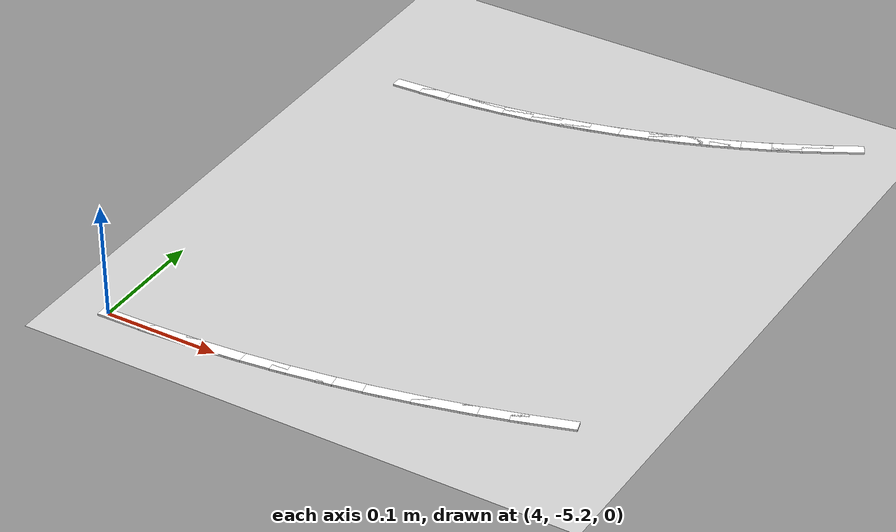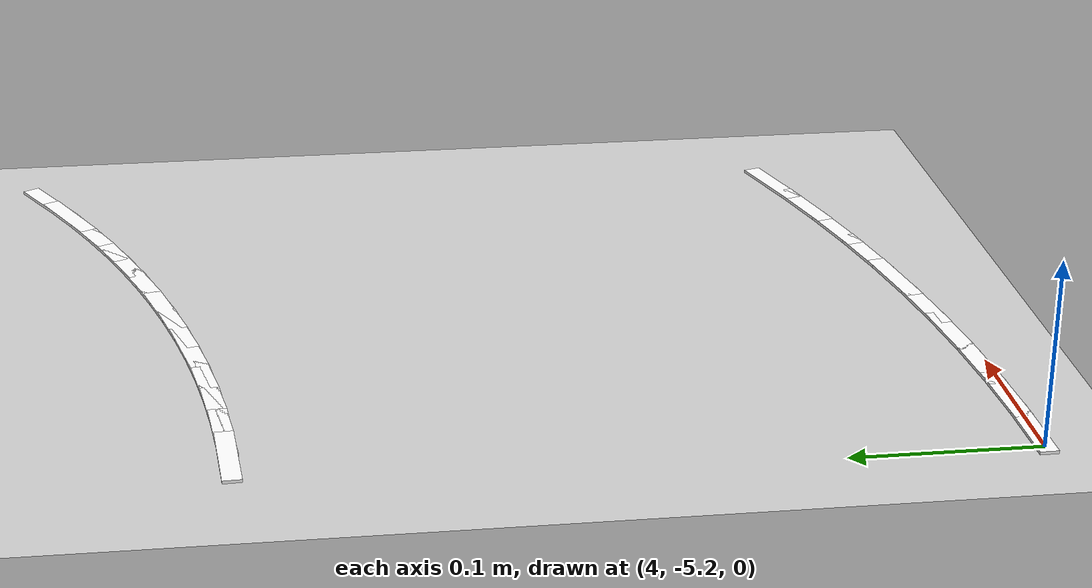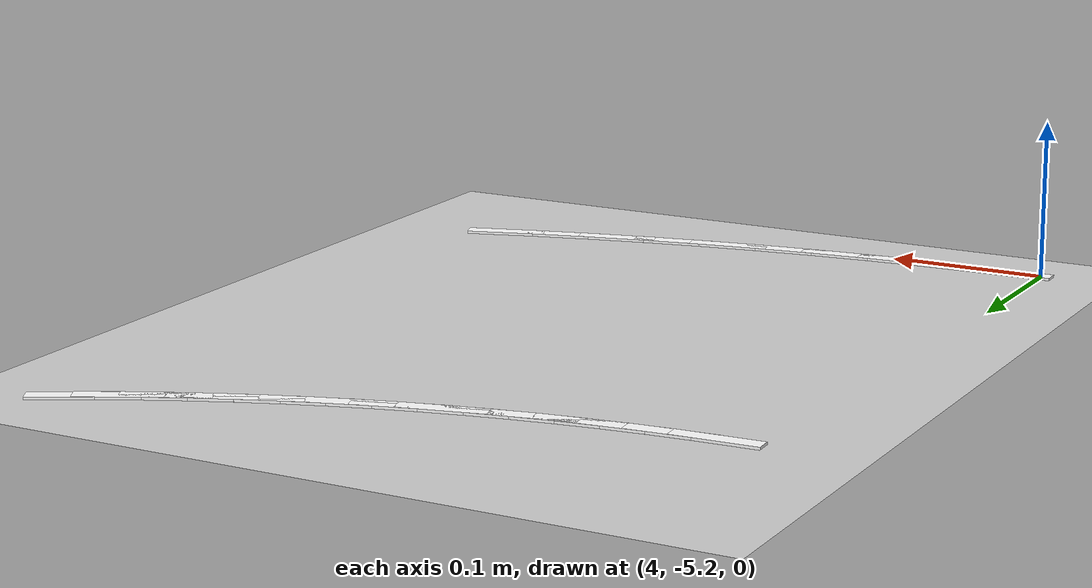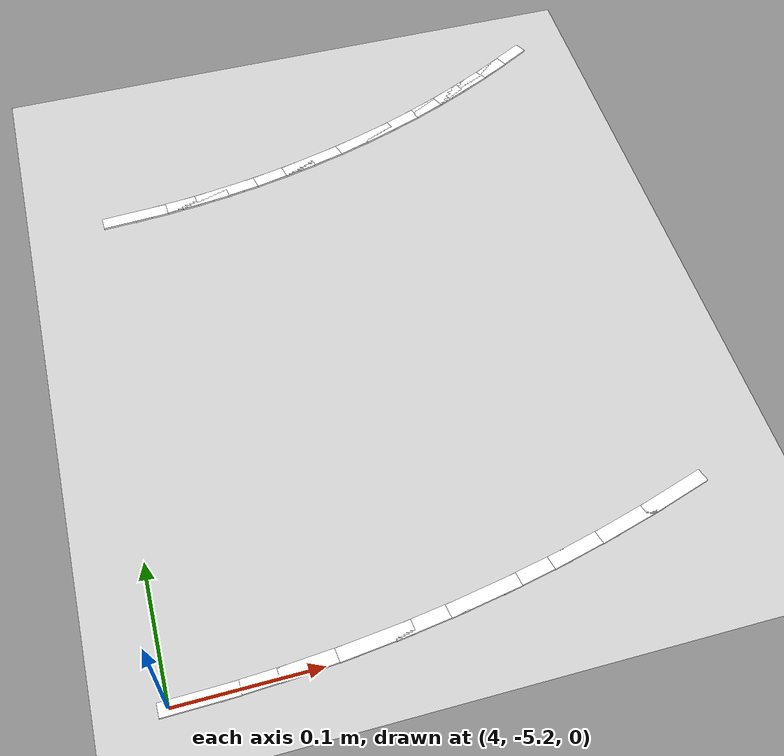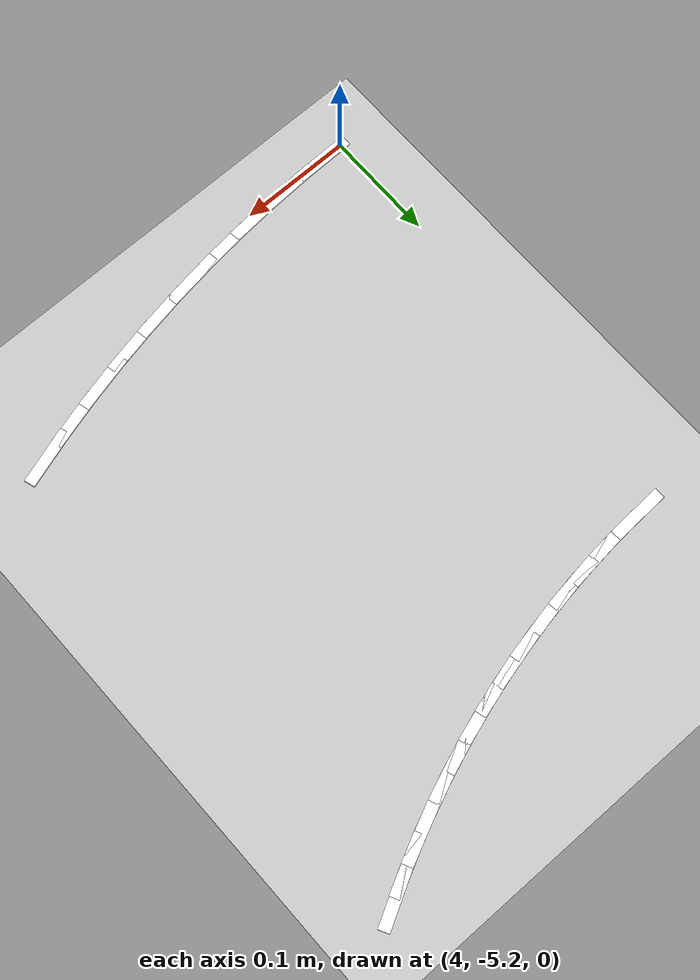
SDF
<sdf version="1.7">
 <world name="default">
  <model name="ground_plane">
   <static>1</static>
   <link name="link">
    <collision name="collision">
     <geometry><plane><normal>0 0 1</normal><size>100 100</size></plane></geometry>
     <surface>
      <contact><collide_bitmask>65535</collide_bitmask></contact>
      <friction><ode><mu>100</mu><mu2>50</mu2></ode></friction>
     </surface>
    </collision>
    <visual name="visual">
     <cast_shadows>0</cast_shadows>
     <geometry><plane><normal>0 0 1</normal><size>100 100</size></plane></geometry>
     <material>
      <script><uri>file://media/materials/scripts/gazebo.material</uri><name>Gazebo/Grey</name></script>
     </material>
    </visual>
   </link>
  </model>
  <model name="lane_line_right_50">
   <static>1</static>
   <link name="link">
    <pose>0 0 -0.004 0 -0 0</pose>
    <visual name="visual">
     <geometry><box><size>0.0521 0.01 0.01</size></box></geometry>
     <material><ambient>1 1 1 1</ambient><diffuse>1 1 1 1</diffuse></material>
    </visual>
    <collision name="collision"><geometry><box><size>0.0521 0.01 0.01</size></box></geometry></collision>
   </link>
   <pose>4.01923 -5.19972 0 0 -0 0.016029</pose>
  </model>
  <model name="lane_line_left_51">
   <static>1</static>
   <link name="link">
    <pose>0 0 -0.004 0 -0 0</pose>
    <visual name="visual">
     <geometry><box><size>0.0521 0.01 0.01</size></box></geometry>
     <material><ambient>1 1 1 1</ambient><diffuse>1 1 1 1</diffuse></material>
    </visual>
    <collision name="collision"><geometry><box><size>0.0521 0.01 0.01</size></box></geometry></collision>
   </link>
   <pose>4.03845 -4.79895 0 0 -0 0.048086</pose>
  </model>
  <model name="lane_line_right_51">
   <static>1</static>
   <link name="link">
    <pose>0 0 -0.004 0 -0 0</pose>
    <visual name="visual">
     <geometry><box><size>0.0521 0.01 0.01</size></box></geometry>
     <material><ambient>1 1 1 1</ambient><diffuse>1 1 1 1</diffuse></material>
    </visual>
    <collision name="collision"><geometry><box><size>0.0521 0.01 0.01</size></box></geometry></collision>
   </link>
   <pose>4.05767 -5.19848 0 0 -0 0.048086</pose>
  </model>
  <model name="lane_line_left_52">
   <static>1</static>
   <link name="link">
    <pose>0 0 -0.004 0 -0 0</pose>
    <visual name="visual">
     <geometry><box><size>0.0521 0.01 0.01</size></box></geometry>
     <material><ambient>1 1 1 1</ambient><diffuse>1 1 1 1</diffuse></material>
    </visual>
    <collision name="collision"><geometry><box><size>0.0521 0.01 0.01</size></box></geometry></collision>
   </link>
   <pose>4.06404 -4.7973 0 0 -0 0.080143</pose>
  </model>
  <model name="lane_line_right_52">
   <static>1</static>
   <link name="link">
    <pose>0 0 -0.004 0 -0 0</pose>
    <visual name="visual">
     <geometry><box><size>0.0521 0.01 0.01</size></box></geometry>
     <material><ambient>1 1 1 1</ambient><diffuse>1 1 1 1</diffuse></material>
    </visual>
    <collision name="collision"><geometry><box><size>0.0521 0.01 0.01</size></box></geometry></collision>
   </link>
   <pose>4.09606 -5.19602 0 0 -0 0.080143</pose>
  </model>
  <model name="lane_line_left_53">
   <static>1</static>
   <link name="link">
    <pose>0 0 -0.004 0 -0 0</pose>
    <visual name="visual">
     <geometry><box><size>0.0521 0.01 0.01</size></box></geometry>
     <material><ambient>1 1 1 1</ambient><diffuse>1 1 1 1</diffuse></material>
    </visual>
    <collision name="collision"><geometry><box><size>0.0521 0.01 0.01</size></box></geometry></collision>
   </link>
   <pose>4.08956 -4.79484 0 0 -0 0.1122</pose>
  </model>
  <model name="lane_line_right_53">
   <static>1</static>
   <link name="link">
    <pose>0 0 -0.004 0 -0 0</pose>
    <visual name="visual">
     <geometry><box><size>0.0521 0.01 0.01</size></box></geometry>
     <material><ambient>1 1 1 1</ambient><diffuse>1 1 1 1</diffuse></material>
    </visual>
    <collision name="collision"><geometry><box><size>0.0521 0.01 0.01</size></box></geometry></collision>
   </link>
   <pose>4.13434 -5.19233 0 0 -0 0.1122</pose>
  </model>
  <model name="lane_line_left_54">
   <static>1</static>
   <link name="link">
    <pose>0 0 -0.004 0 -0 0</pose>
    <visual name="visual">
     <geometry><box><size>0.0521 0.01 0.01</size></box></geometry>
     <material><ambient>1 1 1 1</ambient><diffuse>1 1 1 1</diffuse></material>
    </visual>
    <collision name="collision"><geometry><box><size>0.0521 0.01 0.01</size></box></geometry></collision>
   </link>
   <pose>4.11499 -4.79156 0 0 -0 0.144257</pose>
  </model>
  <model name="lane_line_right_54">
   <static>1</static>
   <link name="link">
    <pose>0 0 -0.004 0 -0 0</pose>
    <visual name="visual">
     <geometry><box><size>0.0521 0.01 0.01</size></box></geometry>
     <material><ambient>1 1 1 1</ambient><diffuse>1 1 1 1</diffuse></material>
    </visual>
    <collision name="collision"><geometry><box><size>0.0521 0.01 0.01</size></box></geometry></collision>
   </link>
   <pose>4.17249 -5.18741 0 0 -0 0.144257</pose>
  </model>
  <model name="lane_line_left_55">
   <static>1</static>
   <link name="link">
    <pose>0 0 -0.004 0 -0 0</pose>
    <visual name="visual">
     <geometry><box><size>0.0521 0.01 0.01</size></box></geometry>
     <material><ambient>1 1 1 1</ambient><diffuse>1 1 1 1</diffuse></material>
    </visual>
    <collision name="collision"><geometry><box><size>0.0521 0.01 0.01</size></box></geometry></collision>
   </link>
   <pose>4.1403 -4.78747 0 0 -0 0.176314</pose>
  </model>
  <model name="lane_line_right_55">
   <static>1</static>
   <link name="link">
    <pose>0 0 -0.004 0 -0 0</pose>
    <visual name="visual">
     <geometry><box><size>0.0521 0.01 0.01</size></box></geometry>
     <material><ambient>1 1 1 1</ambient><diffuse>1 1 1 1</diffuse></material>
    </visual>
    <collision name="collision"><geometry><box><size>0.0521 0.01 0.01</size></box></geometry></collision>
   </link>
   <pose>4.21046 -5.18127 0 0 -0 0.176314</pose>
  </model>
  <model name="lane_line_left_56">
   <static>1</static>
   <link name="link">
    <pose>0 0 -0.004 0 -0 0</pose>
    <visual name="visual">
     <geometry><box><size>0.0521 0.01 0.01</size></box></geometry>
     <material><ambient>1 1 1 1</ambient><diffuse>1 1 1 1</diffuse></material>
    </visual>
    <collision name="collision"><geometry><box><size>0.0521 0.01 0.01</size></box></geometry></collision>
   </link>
   <pose>4.16547 -4.78257 0 0 -0 0.208371</pose>
  </model>
  <model name="lane_line_right_56">
   <static>1</static>
   <link name="link">
    <pose>0 0 -0.004 0 -0 0</pose>
    <visual name="visual">
     <geometry><box><size>0.0521 0.01 0.01</size></box></geometry>
     <material><ambient>1 1 1 1</ambient><diffuse>1 1 1 1</diffuse></material>
    </visual>
    <collision name="collision"><geometry><box><size>0.0521 0.01 0.01</size></box></geometry></collision>
   </link>
   <pose>4.24821 -5.17392 0 0 -0 0.208371</pose>
  </model>
  <model name="lane_line_left_57">
   <static>1</static>
   <link name="link">
    <pose>0 0 -0.004 0 -0 0</pose>
    <visual name="visual">
     <geometry><box><size>0.0521 0.01 0.01</size></box></geometry>
     <material><ambient>1 1 1 1</ambient><diffuse>1 1 1 1</diffuse></material>
    </visual>
    <collision name="collision"><geometry><box><size>0.0521 0.01 0.01</size></box></geometry></collision>
   </link>
   <pose>4.19046 -4.77686 0 0 -0 0.240428</pose>
  </model>
  <model name="lane_line_right_57">
   <static>1</static>
   <link name="link">
    <pose>0 0 -0.004 0 -0 0</pose>
    <visual name="visual">
     <geometry><box><size>0.0521 0.01 0.01</size></box></geometry>
     <material><ambient>1 1 1 1</ambient><diffuse>1 1 1 1</diffuse></material>
    </visual>
    <collision name="collision"><geometry><box><size>0.0521 0.01 0.01</size></box></geometry></collision>
   </link>
   <pose>4.28571 -5.16536 0 0 -0 0.240428</pose>
  </model>
  <model name="lane_line_left_58">
   <static>1</static>
   <link name="link">
    <pose>0 0 -0.004 0 -0 0</pose>
    <visual name="visual">
     <geometry><box><size>0.0521 0.01 0.01</size></box></geometry>
     <material><ambient>1 1 1 1</ambient><diffuse>1 1 1 1</diffuse></material>
    </visual>
    <collision name="collision"><geometry><box><size>0.0521 0.01 0.01</size></box></geometry></collision>
   </link>
   <pose>4.21527 -4.77036 0 0 -0 0.272485</pose>
  </model>
  <model name="lane_line_right_58">
   <static>1</static>
   <link name="link">
    <pose>0 0 -0.004 0 -0 0</pose>
    <visual name="visual">
     <geometry><box><size>0.0521 0.01 0.01</size></box></geometry>
     <material><ambient>1 1 1 1</ambient><diffuse>1 1 1 1</diffuse></material>
    </visual>
    <collision name="collision"><geometry><box><size>0.0521 0.01 0.01</size></box></geometry></collision>
   </link>
   <pose>4.32292 -5.1556 0 0 -0 0.272485</pose>
  </model>
  <model name="lane_line_left_59">
   <static>1</static>
   <link name="link">
    <pose>0 0 -0.004 0 -0 0</pose>
    <visual name="visual">
     <geometry><box><size>0.0521 0.01 0.01</size></box></geometry>
     <material><ambient>1 1 1 1</ambient><diffuse>1 1 1 1</diffuse></material>
    </visual>
    <collision name="collision"><geometry><box><size>0.0521 0.01 0.01</size></box></geometry></collision>
   </link>
   <pose>4.23985 -4.76306 0 0 -0 0.304542</pose>
  </model>
  <model name="lane_line_right_59">
   <static>1</static>
   <link name="link">
    <pose>0 0 -0.004 0 -0 0</pose>
    <visual name="visual">
     <geometry><box><size>0.0521 0.01 0.01</size></box></geometry>
     <material><ambient>1 1 1 1</ambient><diffuse>1 1 1 1</diffuse></material>
    </visual>
    <collision name="collision"><geometry><box><size>0.0521 0.01 0.01</size></box></geometry></collision>
   </link>
   <pose>4.35979 -5.14466 0 0 -0 0.304542</pose>
  </model>
  <model name="lane_line_left_60">
   <static>1</static>
   <link name="link">
    <pose>0 0 -0.004 0 -0 0</pose>
    <visual name="visual">
     <geometry><box><size>0.0521 0.01 0.01</size></box></geometry>
     <material><ambient>1 1 1 1</ambient><diffuse>1 1 1 1</diffuse></material>
    </visual>
    <collision name="collision"><geometry><box><size>0.0521 0.01 0.01</size></box></geometry></collision>
   </link>
   <pose>4.26418 -4.75499 0 0 -0 0.336599</pose>
  </model>
  <model name="lane_line_left_61">
   <static>1</static>
   <link name="link">
    <pose>0 0 -0.004 0 -0 0</pose>
    <visual name="visual">
     <geometry><box><size>0.0521 0.01 0.01</size></box></geometry>
     <material><ambient>1 1 1 1</ambient><diffuse>1 1 1 1</diffuse></material>
    </visual>
    <collision name="collision"><geometry><box><size>0.0521 0.01 0.01</size></box></geometry></collision>
   </link>
   <pose>4.28824 -4.74613 0 0 -0 0.368656</pose>
  </model>
  <model name="lane_line_left_62">
   <static>1</static>
   <link name="link">
    <pose>0 0 -0.004 0 -0 0</pose>
    <visual name="visual">
     <geometry><box><size>0.0521 0.01 0.01</size></box></geometry>
     <material><ambient>1 1 1 1</ambient><diffuse>1 1 1 1</diffuse></material>
    </visual>
    <collision name="collision"><geometry><box><size>0.0521 0.01 0.01</size></box></geometry></collision>
   </link>
   <pose>4.31201 -4.73651 0 0 -0 0.400713</pose>
  </model>
  <model name="lane_line_left_63">
   <static>1</static>
   <link name="link">
    <pose>0 0 -0.004 0 -0 0</pose>
    <visual name="visual">
     <geometry><box><size>0.0521 0.01 0.01</size></box></geometry>
     <material><ambient>1 1 1 1</ambient><diffuse>1 1 1 1</diffuse></material>
    </visual>
    <collision name="collision"><geometry><box><size>0.0521 0.01 0.01</size></box></geometry></collision>
   </link>
   <pose>4.33546 -4.72613 0 0 -0 0.43277</pose>
  </model>
  <model name="lane_line_left_64">
   <static>1</static>
   <link name="link">
    <pose>0 0 -0.004 0 -0 0</pose>
    <visual name="visual">
     <geometry><box><size>0.0521 0.01 0.01</size></box></geometry>
     <material><ambient>1 1 1 1</ambient><diffuse>1 1 1 1</diffuse></material>
    </visual>
    <collision name="collision"><geometry><box><size>0.0521 0.01 0.01</size></box></geometry></collision>
   </link>
   <pose>4.35856 -4.715 0 0 -0 0.464827</pose>
  </model>
  <model name="lane_line_left_65">
   <static>1</static>
   <link name="link">
    <pose>0 0 -0.004 0 -0 0</pose>
    <visual name="visual">
     <geometry><box><size>0.0521 0.01 0.01</size></box></geometry>
     <material><ambient>1 1 1 1</ambient><diffuse>1 1 1 1</diffuse></material>
    </visual>
    <collision name="collision"><geometry><box><size>0.0521 0.01 0.01</size></box></geometry></collision>
   </link>
   <pose>4.38129 -4.70314 0 0 -0 0.496885</pose>
  </model>
 </world>
</sdf>
